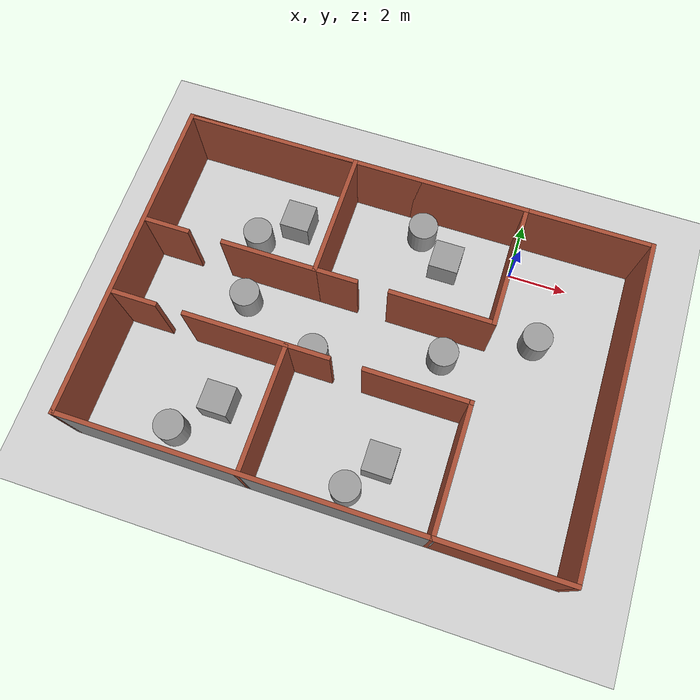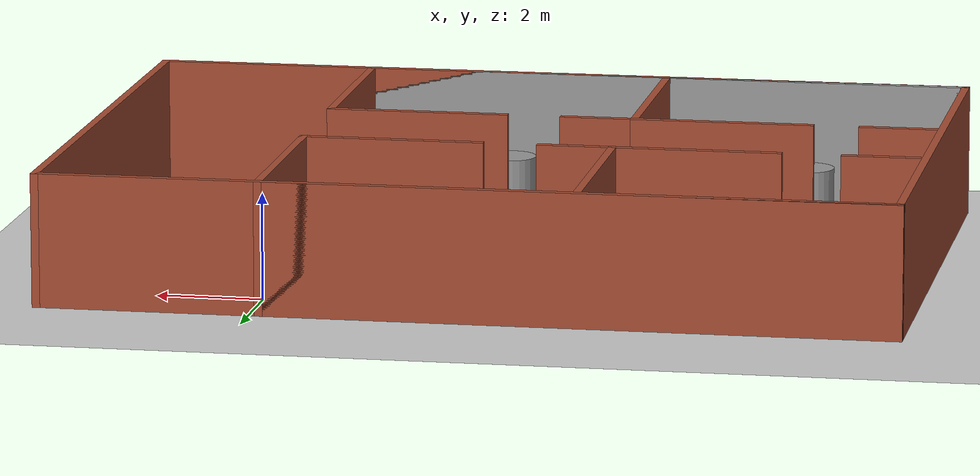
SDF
<sdf version="1.7">
 <world name="default">
  <light name="sun" type="directional">
   <pose>0 0 10 0 -0 0</pose>
   <diffuse>0.8 0.8 0.8 1</diffuse>
   <specular>0.2 0.2 0.2 1</specular>
   <attenuation>
    <range>1000</range>
    <constant>0.9</constant>
    <linear>0.01</linear>
    <quadratic>0.001</quadratic>
   </attenuation>
   <direction>-0.5 0.1 -0.9</direction>
   <spot><inner_angle>0</inner_angle><outer_angle>0</outer_angle><falloff>0</falloff></spot>
  </light>
  <model name="ground_plane">
   <static>1</static>
   <link name="link">
    <collision name="collision">
     <geometry><plane><normal>0 0 1</normal><size>100 100</size></plane></geometry>
     <surface>
      <contact><collide_bitmask>65535</collide_bitmask></contact>
      <friction><ode><mu>100</mu><mu2>50</mu2></ode></friction>
     </surface>
    </collision>
    <visual name="visual">
     <cast_shadows>0</cast_shadows>
     <geometry><plane><normal>0 0 1</normal><size>100 100</size></plane></geometry>
     <material>
      <script><uri>file://media/materials/scripts/gazebo.material</uri><name>Gazebo/Grey</name></script>
     </material>
    </visual>
   </link>
  </model>
  <gravity>0 0 -9.8</gravity>
  <magnetic_field>6e-06 2.3e-05 -4.2e-05</magnetic_field>
  <atmosphere type="adiabatic"/>
  <physics type="ode">
   <max_step_size>0.001</max_step_size>
   <real_time_factor>1</real_time_factor>
   <real_time_update_rate>1000</real_time_update_rate>
  </physics>
  <scene><ambient>0.4 0.4 0.4 1</ambient><background>0.7 0.7 0.7 1</background><shadows>1</shadows></scene>
  <spherical_coordinates>
   <surface_model>EARTH_WGS84</surface_model>
   <latitude_deg>0</latitude_deg>
   <longitude_deg>0</longitude_deg>
   <elevation>0</elevation>
   <heading_deg>0</heading_deg>
  </spherical_coordinates>
  <model name="1">
   <pose>-3.95536 -4.19082 0 0 -0 0</pose>
   <link name="Wall_22">
    <collision name="Wall_22_Collision">
     <geometry><box><size>16 0.15 2.5</size></box></geometry>
     <pose>0 0 1.25 0 -0 0</pose>
    </collision>
    <visual name="Wall_22_Visual">
     <pose>0 0 1.25 0 -0 0</pose>
     <geometry><box><size>16 0.15 2.5</size></box></geometry>
     <material>
      <script><uri>file://media/materials/scripts/gazebo.material</uri><name>Gazebo/Bricks</name></script>
      <ambient>1 1 1 1</ambient>
     </material>
     <meta><layer>0</layer></meta>
    </visual>
    <pose>0 -5.425 0 0 -0 0</pose>
   </link>
   <link name="Wall_23">
    <collision name="Wall_23_Collision">
     <geometry><box><size>11 0.15 2.5</size></box></geometry>
     <pose>0 0 1.25 0 -0 0</pose>
    </collision>
    <visual name="Wall_23_Visual">
     <pose>0 0 1.25 0 -0 0</pose>
     <geometry><box><size>11 0.15 2.5</size></box></geometry>
     <material>
      <script><uri>file://media/materials/scripts/gazebo.material</uri><name>Gazebo/Bricks</name></script>
      <ambient>1 1 1 1</ambient>
     </material>
     <meta><layer>0</layer></meta>
    </visual>
    <pose>7.925 -0 0 0 -0 1.5708</pose>
   </link>
   <link name="Wall_24">
    <collision name="Wall_24_Collision">
     <geometry><box><size>16 0.15 2.5</size></box></geometry>
     <pose>0 0 1.25 0 -0 0</pose>
    </collision>
    <visual name="Wall_24_Visual">
     <pose>0 0 1.25 0 -0 0</pose>
     <geometry><box><size>16 0.15 2.5</size></box></geometry>
     <material>
      <script><uri>file://media/materials/scripts/gazebo.material</uri><name>Gazebo/Bricks</name></script>
      <ambient>1 1 1 1</ambient>
     </material>
     <meta><layer>0</layer></meta>
    </visual>
    <pose>0 5.425 0 0 -0 3.14159</pose>
   </link>
   <link name="Wall_25">
    <collision name="Wall_25_Collision">
     <geometry><box><size>11 0.15 2.5</size></box></geometry>
     <pose>0 0 1.25 0 -0 0</pose>
    </collision>
    <visual name="Wall_25_Visual">
     <pose>0 0 1.25 0 -0 0</pose>
     <geometry><box><size>11 0.15 2.5</size></box></geometry>
     <material>
      <script><uri>file://media/materials/scripts/gazebo.material</uri><name>Gazebo/Bricks</name></script>
      <ambient>1 1 1 1</ambient>
     </material>
     <meta><layer>0</layer></meta>
    </visual>
    <pose>-7.925 -0 0 0 -0 -1.5708</pose>
   </link>
   <link name="Wall_27">
    <collision name="Wall_27_Collision">
     <geometry><box><size>6 0.15 2.5</size></box></geometry>
     <pose>0 0 1.25 0 -0 0</pose>
    </collision>
    <visual name="Wall_27_Visual">
     <pose>0 0 1.25 0 -0 0</pose>
     <geometry><box><size>6 0.15 2.5</size></box></geometry>
     <material>
      <script><uri>file://media/materials/scripts/gazebo.material</uri><name>Gazebo/Grey</name></script>
      <ambient>1 1 1 1</ambient>
     </material>
     <meta><layer>0</layer></meta>
    </visual>
    <pose>-5 -5.425 0 0 -0 0</pose>
   </link>
   <link name="Wall_33">
    <collision name="Wall_33_Collision">
     <geometry><box><size>6 0.15 2.5</size></box></geometry>
     <pose>0 0 1.25 0 -0 0</pose>
    </collision>
    <visual name="Wall_33_Visual">
     <pose>0 0 1.25 0 -0 0</pose>
     <geometry><box><size>6 0.15 2.5</size></box></geometry>
     <material>
      <script><uri>file://media/materials/scripts/gazebo.material</uri><name>Gazebo/Bricks</name></script>
      <ambient>1 1 1 1</ambient>
     </material>
     <meta><layer>0</layer></meta>
    </visual>
    <pose>-5 -5.425 0 0 -0 0</pose>
   </link>
   <link name="Wall_34">
    <collision name="Wall_34_Collision">
     <geometry><box><size>4.25 0.15 2.5</size></box></geometry>
     <pose>0 0 1.25 0 -0 0</pose>
    </collision>
    <visual name="Wall_34_Visual">
     <pose>0 0 1.25 0 -0 0</pose>
     <geometry><box><size>4.25 0.15 2.5</size></box></geometry>
     <material>
      <script><uri>file://media/materials/scripts/gazebo.material</uri><name>Gazebo/Bricks</name></script>
      <ambient>1 1 1 1</ambient>
     </material>
     <meta><layer>0</layer></meta>
    </visual>
    <pose>-2.075 -3.375 0 0 -0 1.5708</pose>
   </link>
   <link name="Wall_35">
    <collision name="Wall_35_Collision">
     <geometry><box><size>3.5 0.15 2.5</size></box></geometry>
     <pose>0 0 1.25 0 -0 0</pose>
    </collision>
    <visual name="Wall_35_Visual">
     <pose>0 0 1.25 0 -0 0</pose>
     <geometry><box><size>3.5 0.15 2.5</size></box></geometry>
     <material>
      <script><uri>file://media/materials/scripts/gazebo.material</uri><name>Gazebo/Bricks</name></script>
      <ambient>1 1 1 1</ambient>
     </material>
     <meta><layer>0</layer></meta>
    </visual>
    <pose>-3.75 -1.325 0 0 -0 3.14159</pose>
   </link>
   <link name="Wall_37">
    <collision name="Wall_37_Collision">
     <geometry><box><size>1.5 0.15 2.5</size></box></geometry>
     <pose>0 0 1.25 0 -0 0</pose>
    </collision>
    <visual name="Wall_37_Visual">
     <pose>0 0 1.25 0 -0 0</pose>
     <geometry><box><size>1.5 0.15 2.5</size></box></geometry>
     <material>
      <script><uri>file://media/materials/scripts/gazebo.material</uri><name>Gazebo/Bricks</name></script>
      <ambient>1 1 1 1</ambient>
     </material>
     <meta><layer>0</layer></meta>
    </visual>
    <pose>-7.1 -1.325 0 0 -0 0</pose>
   </link>
   <link name="Wall_39">
    <collision name="Wall_39_Collision">
     <geometry><box><size>6 0.15 2.5</size></box></geometry>
     <pose>0 0 1.25 0 -0 0</pose>
    </collision>
    <visual name="Wall_39_Visual">
     <pose>0 0 1.25 0 -0 0</pose>
     <geometry><box><size>6 0.15 2.5</size></box></geometry>
     <material>
      <script><uri>file://media/materials/scripts/gazebo.material</uri><name>Gazebo/Grey</name></script>
      <ambient>1 1 1 1</ambient>
     </material>
     <meta><layer>0</layer></meta>
    </visual>
    <pose>0.85 -5.425 0 0 -0 0</pose>
   </link>
   <link name="Wall_40">
    <collision name="Wall_40_Collision">
     <geometry><box><size>4.25 0.15 2.5</size></box></geometry>
     <pose>0 0 1.25 0 -0 0</pose>
    </collision>
    <visual name="Wall_40_Visual">
     <pose>0 0 1.25 0 -0 0</pose>
     <geometry><box><size>4.25 0.15 2.5</size></box></geometry>
     <material>
      <script><uri>file://media/materials/scripts/gazebo.material</uri><name>Gazebo/Bricks</name></script>
      <ambient>1 1 1 1</ambient>
     </material>
     <meta><layer>0</layer></meta>
    </visual>
    <pose>3.775 -3.375 0 0 -0 1.5708</pose>
   </link>
   <link name="Wall_41">
    <collision name="Wall_41_Collision">
     <geometry><box><size>3.5 0.15 2.5</size></box></geometry>
     <pose>0 0 1.25 0 -0 0</pose>
    </collision>
    <visual name="Wall_41_Visual">
     <pose>0 0 1.25 0 -0 0</pose>
     <geometry><box><size>3.5 0.15 2.5</size></box></geometry>
     <material>
      <script><uri>file://media/materials/scripts/gazebo.material</uri><name>Gazebo/Bricks</name></script>
      <ambient>1 1 1 1</ambient>
     </material>
     <meta><layer>0</layer></meta>
    </visual>
    <pose>2.1 -1.325 0 0 -0 3.14159</pose>
   </link>
   <link name="Wall_43">
    <collision name="Wall_43_Collision">
     <geometry><box><size>1.5 0.15 2.5</size></box></geometry>
     <pose>0 0 1.25 0 -0 0</pose>
    </collision>
    <visual name="Wall_43_Visual">
     <pose>0 0 1.25 0 -0 0</pose>
     <geometry><box><size>1.5 0.15 2.5</size></box></geometry>
     <material>
      <script><uri>file://media/materials/scripts/gazebo.material</uri><name>Gazebo/Bricks</name></script>
      <ambient>1 1 1 1</ambient>
     </material>
     <meta><layer>0</layer></meta>
    </visual>
    <pose>-1.4 -1.325 0 0 -0 0</pose>
   </link>
   <link name="Wall_45">
    <collision name="Wall_45_Collision">
     <geometry><box><size>6 0.15 2.5</size></box></geometry>
     <pose>0 0 1.25 0 -0 0</pose>
    </collision>
    <visual name="Wall_45_Visual">
     <pose>0 0 1.25 0 -0 0</pose>
     <geometry><box><size>6 0.15 2.5</size></box></geometry>
     <material>
      <script><uri>file://media/materials/scripts/gazebo.material</uri><name>Gazebo/Bricks</name></script>
      <ambient>1 1 1 1</ambient>
     </material>
     <meta><layer>0</layer></meta>
    </visual>
    <pose>-5 5.425 0 0 -0 0</pose>
   </link>
   <link name="Wall_46">
    <collision name="Wall_46_Collision">
     <geometry><box><size>4.25 0.15 2.5</size></box></geometry>
     <pose>0 0 1.25 0 -0 0</pose>
    </collision>
    <visual name="Wall_46_Visual">
     <pose>0 0 1.25 0 -0 0</pose>
     <geometry><box><size>4.25 0.15 2.5</size></box></geometry>
     <material>
      <script><uri>file://media/materials/scripts/gazebo.material</uri><name>Gazebo/Bricks</name></script>
      <ambient>1 1 1 1</ambient>
     </material>
     <meta><layer>0</layer></meta>
    </visual>
    <pose>-2.075 3.375 0 0 -0 -1.5708</pose>
   </link>
   <link name="Wall_47">
    <collision name="Wall_47_Collision">
     <geometry><box><size>3.25 0.15 2.5</size></box></geometry>
     <pose>0 0 1.25 0 -0 0</pose>
    </collision>
    <visual name="Wall_47_Visual">
     <pose>0 0 1.25 0 -0 0</pose>
     <geometry><box><size>3.25 0.15 2.5</size></box></geometry>
     <material>
      <script><uri>file://media/materials/scripts/gazebo.material</uri><name>Gazebo/Bricks</name></script>
      <ambient>1 1 1 1</ambient>
     </material>
     <meta><layer>0</layer></meta>
    </visual>
    <pose>-3.625 1.325 0 0 -0 3.14159</pose>
   </link>
   <link name="Wall_49">
    <collision name="Wall_49_Collision">
     <geometry><box><size>1.5 0.15 2.5</size></box></geometry>
     <pose>0 0 1.25 0 -0 0</pose>
    </collision>
    <visual name="Wall_49_Visual">
     <pose>0 0 1.25 0 -0 0</pose>
     <geometry><box><size>1.5 0.15 2.5</size></box></geometry>
     <material>
      <script><uri>file://media/materials/scripts/gazebo.material</uri><name>Gazebo/Bricks</name></script>
      <ambient>1 1 1 1</ambient>
     </material>
     <meta><layer>0</layer></meta>
    </visual>
    <pose>-7.1 1.325 0 0 -0 0</pose>
   </link>
   <link name="Wall_51">
    <collision name="Wall_51_Collision">
     <geometry><box><size>6 0.15 2.5</size></box></geometry>
     <pose>0 0 1.25 0 -0 0</pose>
    </collision>
    <visual name="Wall_51_Visual">
     <pose>0 0 1.25 0 -0 0</pose>
     <geometry><box><size>6 0.15 2.5</size></box></geometry>
     <material>
      <script><uri>file://media/materials/scripts/gazebo.material</uri><name>Gazebo/Bricks</name></script>
      <ambient>1 1 1 1</ambient>
     </material>
     <meta><layer>0</layer></meta>
    </visual>
    <pose>0.85 5.425 0 0 -0 0</pose>
   </link>
   <link name="Wall_52">
    <collision name="Wall_52_Collision">
     <geometry><box><size>4.25 0.15 2.5</size></box></geometry>
     <pose>0 0 1.25 0 -0 0</pose>
    </collision>
    <visual name="Wall_52_Visual">
     <pose>0 0 1.25 0 -0 0</pose>
     <geometry><box><size>4.25 0.15 2.5</size></box></geometry>
     <material>
      <script><uri>file://media/materials/scripts/gazebo.material</uri><name>Gazebo/Bricks</name></script>
      <ambient>1 1 1 1</ambient>
     </material>
     <meta><layer>0</layer></meta>
    </visual>
    <pose>3.775 3.375 0 0 -0 -1.5708</pose>
   </link>
   <link name="Wall_53">
    <collision name="Wall_53_Collision">
     <geometry><box><size>3.5 0.15 2.5</size></box></geometry>
     <pose>0 0 1.25 0 -0 0</pose>
    </collision>
    <visual name="Wall_53_Visual">
     <pose>0 0 1.25 0 -0 0</pose>
     <geometry><box><size>3.5 0.15 2.5</size></box></geometry>
     <material>
      <script><uri>file://media/materials/scripts/gazebo.material</uri><name>Gazebo/Bricks</name></script>
      <ambient>1 1 1 1</ambient>
     </material>
     <meta><layer>0</layer></meta>
    </visual>
    <pose>2.1 1.325 0 0 -0 3.14159</pose>
   </link>
   <link name="Wall_55">
    <collision name="Wall_55_Collision">
     <geometry><box><size>1.5 0.15 2.5</size></box></geometry>
     <pose>0 0 1.25 0 -0 0</pose>
    </collision>
    <visual name="Wall_55_Visual">
     <pose>0 0 1.25 0 -0 0</pose>
     <geometry><box><size>1.5 0.15 2.5</size></box></geometry>
     <material>
      <script><uri>file://media/materials/scripts/gazebo.material</uri><name>Gazebo/Bricks</name></script>
      <ambient>1 1 1 1</ambient>
     </material>
     <meta><layer>0</layer></meta>
    </visual>
    <pose>-1.4 1.325 0 0 -0 0</pose>
   </link>
   <static>1</static>
  </model>
  <model name="unit_box">
   <pose>-2.2483 -0.418868 0.499995 -1e-05 -0 -0</pose>
   <link name="link">
    <inertial>
     <mass>1</mass>
     <inertia>
      <ixx>0.166667</ixx>
      <ixy>0</ixy>
      <ixz>0</ixz>
      <iyy>0.166667</iyy>
      <iyz>0</iyz>
      <izz>0.166667</izz>
     </inertia>
    </inertial>
    <collision name="collision"><geometry><box><size>1 1 1</size></box></geometry></collision>
    <visual name="visual">
     <geometry><box><size>1 1 1</size></box></geometry>
     <material>
      <script><name>Gazebo/Grey</name><uri>file://media/materials/scripts/gazebo.material</uri></script>
     </material>
    </visual>
   </link>
  </model>
  <model name="unit_box_0">
   <pose>-2.28423 -7.67881 0.499995 0 1e-05 0</pose>
   <link name="link">
    <inertial>
     <mass>1</mass>
     <inertia>
      <ixx>0.166667</ixx>
      <ixy>0</ixy>
      <ixz>0</ixz>
      <iyy>0.166667</iyy>
      <iyz>0</iyz>
      <izz>0.166667</izz>
     </inertia>
    </inertial>
    <collision name="collision"><geometry><box><size>1 1 1</size></box></geometry></collision>
    <visual name="visual">
     <geometry><box><size>1 1 1</size></box></geometry>
     <material>
      <script><name>Gazebo/Grey</name><uri>file://media/materials/scripts/gazebo.material</uri></script>
     </material>
    </visual>
   </link>
  </model>
  <model name="unit_box_1">
   <pose>-7.83313 -7.41683 0.499995 -1e-05 -0 -0</pose>
   <link name="link">
    <inertial>
     <mass>1</mass>
     <inertia>
      <ixx>0.166667</ixx>
      <ixy>0</ixy>
      <ixz>0</ixz>
      <iyy>0.166667</iyy>
      <iyz>0</iyz>
      <izz>0.166667</izz>
     </inertia>
    </inertial>
    <collision name="collision"><geometry><box><size>1 1 1</size></box></geometry></collision>
    <visual name="visual">
     <geometry><box><size>1 1 1</size></box></geometry>
     <material>
      <script><name>Gazebo/Grey</name><uri>file://media/materials/scripts/gazebo.material</uri></script>
     </material>
    </visual>
   </link>
  </model>
  <model name="unit_box_2">
   <pose>-7.54713 -0.510322 0.499995 0 1e-05 0</pose>
   <link name="link">
    <inertial>
     <mass>1</mass>
     <inertia>
      <ixx>0.166667</ixx>
      <ixy>0</ixy>
      <ixz>0</ixz>
      <iyy>0.166667</iyy>
      <iyz>0</iyz>
      <izz>0.166667</izz>
     </inertia>
    </inertial>
    <collision name="collision"><geometry><box><size>1 1 1</size></box></geometry></collision>
    <visual name="visual">
     <geometry><box><size>1 1 1</size></box></geometry>
     <material>
      <script><name>Gazebo/Grey</name><uri>file://media/materials/scripts/gazebo.material</uri></script>
     </material>
    </visual>
   </link>
  </model>
  <model name="unit_cylinder">
   <pose>-3.32572 0.451423 0.499998 3e-06 -4e-06 0</pose>
   <link name="link">
    <inertial>
     <mass>1</mass>
     <inertia><ixx>0.145833</ixx><ixy>0</ixy><ixz>0</ixz><iyy>0.145833</iyy><iyz>0</iyz><izz>0.125</izz></inertia>
    </inertial>
    <collision name="collision">
     <geometry><cylinder><radius>0.5</radius><length>1</length></cylinder></geometry>
    </collision>
    <visual name="visual">
     <geometry><cylinder><radius>0.5</radius><length>1</length></cylinder></geometry>
     <material>
      <script><name>Gazebo/Grey</name><uri>file://media/materials/scripts/gazebo.material</uri></script>
     </material>
    </visual>
   </link>
  </model>
  <model name="unit_cylinder_0">
   <pose>-3.07712 -8.80391 0.499992 -3e-06 4e-06 0</pose>
   <link name="link">
    <inertial>
     <mass>1</mass>
     <inertia><ixx>0.145833</ixx><ixy>0</ixy><ixz>0</ixz><iyy>0.145833</iyy><iyz>0</iyz><izz>0.125</izz></inertia>
    </inertial>
    <collision name="collision">
     <geometry><cylinder><radius>0.5</radius><length>1</length></cylinder></geometry>
    </collision>
    <visual name="visual">
     <geometry><cylinder><radius>0.5</radius><length>1</length></cylinder></geometry>
     <material>
      <script><name>Gazebo/Grey</name><uri>file://media/materials/scripts/gazebo.material</uri></script>
     </material>
    </visual>
   </link>
  </model>
  <model name="unit_cylinder_1">
   <pose>-8.94774 -8.69319 0.499998 3e-06 -4e-06 0</pose>
   <link name="link">
    <inertial>
     <mass>1</mass>
     <inertia><ixx>0.145833</ixx><ixy>0</ixy><ixz>0</ixz><iyy>0.145833</iyy><iyz>0</iyz><izz>0.125</izz></inertia>
    </inertial>
    <collision name="collision">
     <geometry><cylinder><radius>0.5</radius><length>1</length></cylinder></geometry>
    </collision>
    <visual name="visual">
     <geometry><cylinder><radius>0.5</radius><length>1</length></cylinder></geometry>
     <material>
      <script><name>Gazebo/Grey</name><uri>file://media/materials/scripts/gazebo.material</uri></script>
     </material>
    </visual>
   </link>
  </model>
  <model name="unit_cylinder_2">
   <pose>-8.67991 -1.4832 0.499992 -3e-06 -4e-06 -0</pose>
   <link name="link">
    <inertial>
     <mass>1</mass>
     <inertia><ixx>0.145833</ixx><ixy>0</ixy><ixz>0</ixz><iyy>0.145833</iyy><iyz>0</iyz><izz>0.125</izz></inertia>
    </inertial>
    <collision name="collision">
     <geometry><cylinder><radius>0.5</radius><length>1</length></cylinder></geometry>
    </collision>
    <visual name="visual">
     <geometry><cylinder><radius>0.5</radius><length>1</length></cylinder></geometry>
     <material>
      <script><name>Gazebo/Grey</name><uri>file://media/materials/scripts/gazebo.material</uri></script>
     </material>
    </visual>
   </link>
  </model>
  <model name="unit_cylinder_3">
   <pose>-5.49279 -4.90777 0.499993 -3e-06 -3e-06 0</pose>
   <link name="link">
    <inertial>
     <mass>1</mass>
     <inertia><ixx>0.145833</ixx><ixy>0</ixy><ixz>0</ixz><iyy>0.145833</iyy><iyz>0</iyz><izz>0.125</izz></inertia>
    </inertial>
    <collision name="collision">
     <geometry><cylinder><radius>0.5</radius><length>1</length></cylinder></geometry>
    </collision>
    <visual name="visual">
     <geometry><cylinder><radius>0.5</radius><length>1</length></cylinder></geometry>
     <material>
      <script><name>Gazebo/Grey</name><uri>file://media/materials/scripts/gazebo.material</uri></script>
     </material>
    </visual>
   </link>
  </model>
  <model name="unit_cylinder_4">
   <pose>-1.40774 -3.72371 0.499997 3e-06 4e-06 -0</pose>
   <link name="link">
    <inertial>
     <mass>1</mass>
     <inertia><ixx>0.145833</ixx><ixy>0</ixy><ixz>0</ixz><iyy>0.145833</iyy><iyz>0</iyz><izz>0.125</izz></inertia>
    </inertial>
    <collision name="collision">
     <geometry><cylinder><radius>0.5</radius><length>1</length></cylinder></geometry>
    </collision>
    <visual name="visual">
     <geometry><cylinder><radius>0.5</radius><length>1</length></cylinder></geometry>
     <material>
      <script><name>Gazebo/Grey</name><uri>file://media/materials/scripts/gazebo.material</uri></script>
     </material>
    </visual>
   </link>
  </model>
  <model name="unit_cylinder_5">
   <pose>-8.29523 -3.75517 0.499993 -3e-06 -4e-06 -0</pose>
   <link name="link">
    <inertial>
     <mass>1</mass>
     <inertia><ixx>0.145833</ixx><ixy>0</ixy><ixz>0</ixz><iyy>0.145833</iyy><iyz>0</iyz><izz>0.125</izz></inertia>
    </inertial>
    <collision name="collision">
     <geometry><cylinder><radius>0.5</radius><length>1</length></cylinder></geometry>
    </collision>
    <visual name="visual">
     <geometry><cylinder><radius>0.5</radius><length>1</length></cylinder></geometry>
     <material>
      <script><name>Gazebo/Grey</name><uri>file://media/materials/scripts/gazebo.material</uri></script>
     </material>
    </visual>
   </link>
  </model>
  <model name="unit_cylinder_6">
   <pose>1.38038 -2.28282 0.499997 3e-06 4e-06 -0</pose>
   <link name="link">
    <inertial>
     <mass>1</mass>
     <inertia><ixx>0.145833</ixx><ixy>0</ixy><ixz>0</ixz><iyy>0.145833</iyy><iyz>0</iyz><izz>0.125</izz></inertia>
    </inertial>
    <collision name="collision">
     <geometry><cylinder><radius>0.5</radius><length>1</length></cylinder></geometry>
    </collision>
    <visual name="visual">
     <geometry><cylinder><radius>0.5</radius><length>1</length></cylinder></geometry>
     <material>
      <script><name>Gazebo/Grey</name><uri>file://media/materials/scripts/gazebo.material</uri></script>
     </material>
    </visual>
   </link>
  </model>
 </world>
</sdf>
